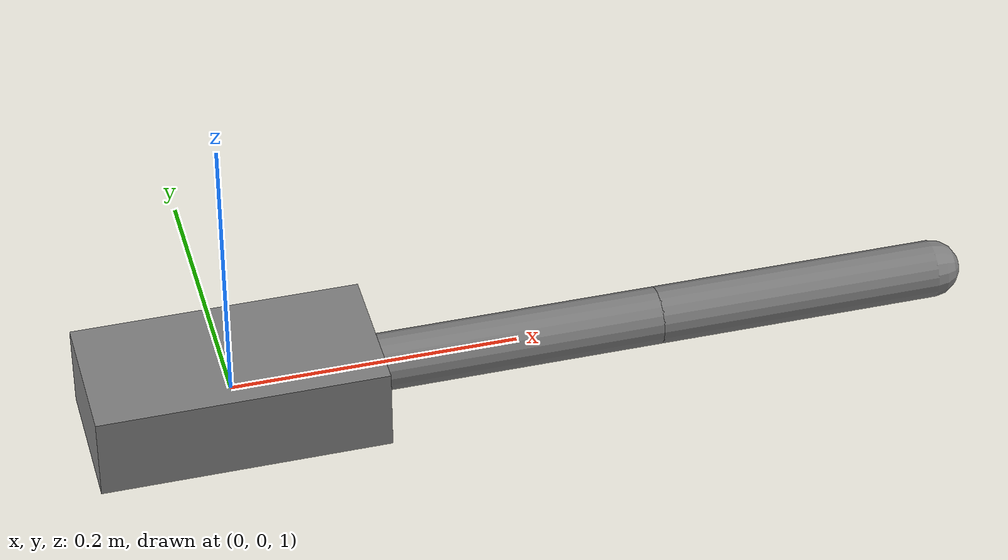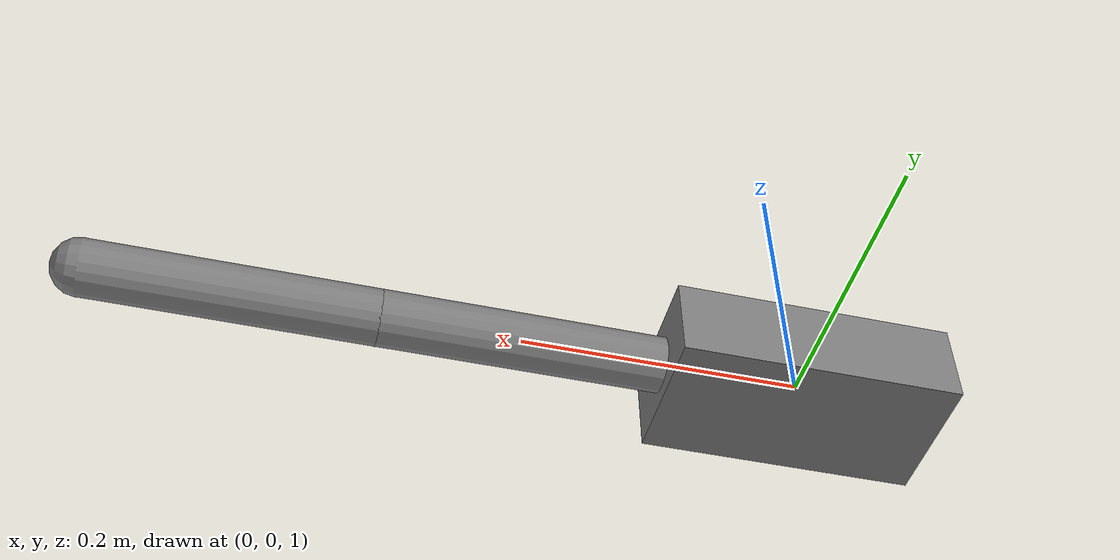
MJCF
<mujoco model="deriv_free">
      <option timestep="0.005" integrator="implicitfast"/>
      <worldbody>
        <body name="f" pos="0 0 1">
          <freejoint/>
          <geom type="box" size="0.1 0.05 0.03" mass="1" contype="0" conaffinity="0"/>
          <body name="c" pos="0.1 0 0">
            <joint type="ball" damping="0.3"/>
            <geom type="capsule" fromto="0 0 0 0.2 0 0" size="0.02" mass="0.3"
                  contype="0" conaffinity="0"/>
            <body name="d" pos="0.2 0 0">
              <joint name="h" type="hinge" axis="0 1 0" damping="0.4"/>
              <geom type="capsule" fromto="0 0 0 0.2 0 0" size="0.02" mass="0.2"
                    contype="0" conaffinity="0"/>
            </body>
          </body>
        </body>
      </worldbody>
      <actuator><motor joint="h" gear="1"/></actuator>
    </mujoco>
